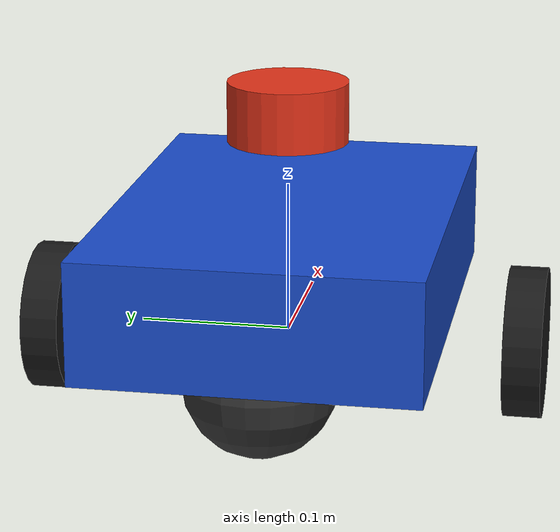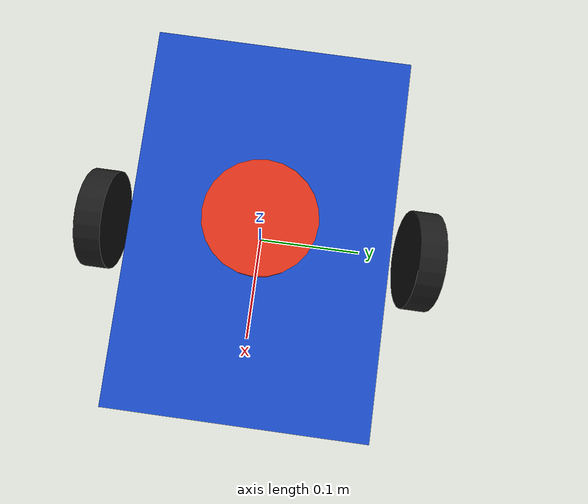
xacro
<?xml version="1.0"?>
<robot name="tcc_robot" xmlns:xacro="http://www.ros.org/wiki/xacro">

  <!-- DIMENSOES PRINCIPAIS DO ROBO                       -->

  <xacro:property name="wheel_radius" value="0.05"/>
  <xacro:property name="wheel_width" value="0.025"/>
  <xacro:property name="wheel_separation" value="0.32"/>

  <!-- CORPO PRINCIPAL                                    -->

  <link name="base_link">

    <inertial>
      <origin xyz="0 0 0.05" rpy="0 0 0"/>
      <mass value="5.0"/>
      <inertia
        ixx="0.025"
        ixy="0.0"
        ixz="0.0"
        iyy="0.040"
        iyz="0.0"
        izz="0.050"/>
    </inertial>

    <visual>
      <origin xyz="0 0 0.05" rpy="0 0 0"/>
      <geometry>
        <box size="0.32 0.22 0.08"/>
      </geometry>
      <material name="blue">
        <color rgba="0.1 0.3 0.8 1"/>
      </material>
    </visual>

    <collision>
      <origin xyz="0 0 0.05" rpy="0 0 0"/>
      <geometry>
        <box size="0.32 0.22 0.08"/>
      </geometry>
    </collision>

  </link>

  <!-- RODA ESQUERDA                                     -->

  <link name="left_wheel_link">

    <inertial>
      <mass value="0.3"/>
      <inertia
        ixx="0.0004"
        ixy="0.0"
        ixz="0.0"
        iyy="0.0004"
        iyz="0.0"
        izz="0.0004"/>
    </inertial>

    <visual>
      <origin xyz="0 0 0" rpy="1.5708 0 0"/>
      <geometry>
        <cylinder radius="${wheel_radius}" length="${wheel_width}"/>
      </geometry>
      <material name="black">
        <color rgba="0.1 0.1 0.1 1"/>
      </material>
    </visual>

    <collision>
      <origin xyz="0 0 0" rpy="1.5708 0 0"/>
      <geometry>
        <cylinder radius="${wheel_radius}" length="${wheel_width}"/>
      </geometry>
    </collision>

  </link>

  <joint name="left_wheel_joint" type="continuous">
    <parent link="base_link"/>
    <child link="left_wheel_link"/>
    <origin xyz="0 ${wheel_separation / 2} 0" rpy="0 0 0"/>
    <axis xyz="0 1 0"/>
  </joint>

  <!-- RODA DIREITA                                      -->

  <link name="right_wheel_link">

    <inertial>
      <mass value="0.3"/>
      <inertia
        ixx="0.0004"
        ixy="0.0"
        ixz="0.0"
        iyy="0.0004"
        iyz="0.0"
        izz="0.0004"/>
    </inertial>

    <visual>
      <origin xyz="0 0 0" rpy="1.5708 0 0"/>
      <geometry>
        <cylinder radius="${wheel_radius}" length="${wheel_width}"/>
      </geometry>
      <material name="black"/>
    </visual>

    <collision>
      <origin xyz="0 0 0" rpy="1.5708 0 0"/>
      <geometry>
        <cylinder radius="${wheel_radius}" length="${wheel_width}"/>
      </geometry>
    </collision>

  </link>

  <joint name="right_wheel_joint" type="continuous">
    <parent link="base_link"/>
    <child link="right_wheel_link"/>
    <origin xyz="0 ${-wheel_separation / 2} 0" rpy="0 0 0"/>
    <axis xyz="0 1 0"/>
  </joint>

  <!-- RODA BOBA TRASEIRA (CASTER WHEEL)                  -->

  <link name="back_caster_wheel_link">

    <inertial>
      <origin xyz="0 0 0" rpy="0 0 0"/>
      <mass value="0.15"/>
      <inertia
        ixx="0.00005"
        ixy="0.0"
        ixz="0.0"
        iyy="0.00005"
        iyz="0.0"
        izz="0.00005"/>
    </inertial>

    <!-- Representação visual da roda boba -->
    <visual>
      <origin xyz="0 0 0" rpy="0 0 0"/>
      <geometry>
        <sphere radius="0.05"/>
      </geometry>
      <material name="caster_color">
        <color rgba="0.2 0.2 0.2 1"/>
      </material>
    </visual>

    <!-- Colisão física com o chão -->
    <collision>
      <origin xyz="0 0 0" rpy="0 0 0"/>
      <geometry>
        <sphere radius="0.05"/>
      </geometry>
    </collision>

  </link>

  <!-- Junta fixa: a esfera funciona como apoio passivo -->
  <joint name="back_caster_wheel_joint" type="fixed">
    <parent link="base_link"/>
    <child link="back_caster_wheel_link"/>
    <origin xyz="-0.10 0 0" rpy="0 0 0"/>
  </joint>

  <!-- RODA BOBA DIANTEIRA (CASTER WHEEL)                  -->

  <link name="front_caster_wheel_link">

    <inertial>
      <origin xyz="0 0 0" rpy="0 0 0"/>
      <mass value="0.15"/>
      <inertia
        ixx="0.00005"
        ixy="0.0"
        ixz="0.0"
        iyy="0.00005"
        iyz="0.0"
        izz="0.00005"/>
    </inertial>

    <!-- Representação visual da roda boba -->
    <visual>
      <origin xyz="0 0 0" rpy="0 0 0"/>
      <geometry>
        <sphere radius="0.05"/>
      </geometry>
      <material name="caster_color">
        <color rgba="0.2 0.2 0.2 1"/>
      </material>
    </visual>

    <!-- Colisão física com o chão -->
    <collision>
      <origin xyz="0 0 0" rpy="0 0 0"/>
      <geometry>
        <sphere radius="0.05"/>
      </geometry>
    </collision>

  </link>

  <!-- Junta fixa: a esfera funciona como apoio passivo -->
  <joint name="front_caster_wheel_joint" type="fixed">
    <parent link="base_link"/>
    <child link="front_caster_wheel_link"/>
    <origin xyz="0.10 0 0" rpy="0 0 0"/>
  </joint>

  <!-- SUPORTE DO LIDAR                                  -->

  <link name="lidar_link">

    <visual>
      <geometry>
        <cylinder radius="0.04" length="0.04"/>
      </geometry>
      <material name="lidar_color">
        <color rgba="0.9 0.2 0.1 1"/>
      </material>
    </visual>

    <collision>
      <geometry>
        <cylinder radius="0.04" length="0.04"/>
      </geometry>
    </collision>

    <inertial>
      <mass value="0.1"/>
      <inertia
        ixx="0.0001"
        ixy="0.0"
        ixz="0.0"
        iyy="0.0001"
        iyz="0.0"
        izz="0.0001"/>
    </inertial>

  </link>

  <joint name="lidar_joint" type="fixed">
    <parent link="base_link"/>
    <child link="lidar_link"/>
    <origin xyz="0 0 0.15" rpy="0 0 0"/>
  </joint>

  <!-- Sensor LiDAR 2D para mapear o ambiente -->
  <gazebo reference="lidar_link">
    <sensor name="lidar" type="gpu_lidar">
     <gz_frame_id>lidar_link</gz_frame_id>
      <pose>0 0 0 0 0 0</pose>
      <topic>/scan</topic>
      <update_rate>10</update_rate>
      <always_on>true</always_on>
      <visualize>true</visualize>

      <lidar>
        <scan>
          <horizontal>
            <samples>360</samples>
            <resolution>1</resolution>
            <min_angle>-3.14159</min_angle>
            <max_angle>3.14159</max_angle>
          </horizontal>
        </scan>

        <range>
          <min>0.12</min>
          <max>8.0</max>
          <resolution>0.01</resolution>
        </range>
      </lidar>
    </sensor>
  </gazebo>

  <!-- IMU                                               -->

<link name="imu_link">
    <inertial>
      <origin xyz="0 0 0" rpy="0 0 0"/>
      <mass value="0.05"/>
      <inertia
        ixx="0.00001"
        ixy="0.0"
        ixz="0.0"
        iyy="0.00001"
        iyz="0.0"
        izz="0.00001"/>
    </inertial>
  </link>

  <joint name="imu_joint" type="fixed">
    <parent link="base_link"/>
    <child link="imu_link"/>
    <origin xyz="0 0 0.08" rpy="0 0 0"/>
  </joint>

  <gazebo reference="imu_link">
    <sensor name="imu_sensor" type="imu">
      <pose>0 0 0 0 0 0</pose>
      <always_on>true</always_on>
      <update_rate>50</update_rate>
      <visualize>false</visualize>
      <topic>/imu/data</topic>
    </sensor>
  </gazebo>

  <!-- SISTEMAS DO GAZEBO SIM                            -->

  <gazebo>
    <!-- Publica os estados das juntas -->
    <plugin
      filename="gz-sim-joint-state-publisher-system"
      name="gz::sim::systems::JointStatePublisher"/>

    <!-- Controla o robo diferencial -->
    <plugin
      filename="gz-sim-diff-drive-system"
      name="gz::sim::systems::DiffDrive">

      <left_joint>left_wheel_joint</left_joint>
      <right_joint>right_wheel_joint</right_joint>

      <wheel_separation>${wheel_separation}</wheel_separation>
      <wheel_radius>${wheel_radius}</wheel_radius>

      <topic>/cmd_vel</topic>
      <odom_topic>/odom</odom_topic>
      <frame_id>odom</frame_id>
      <child_frame_id>base_link</child_frame_id>

    </plugin>
  </gazebo>

</robot>
